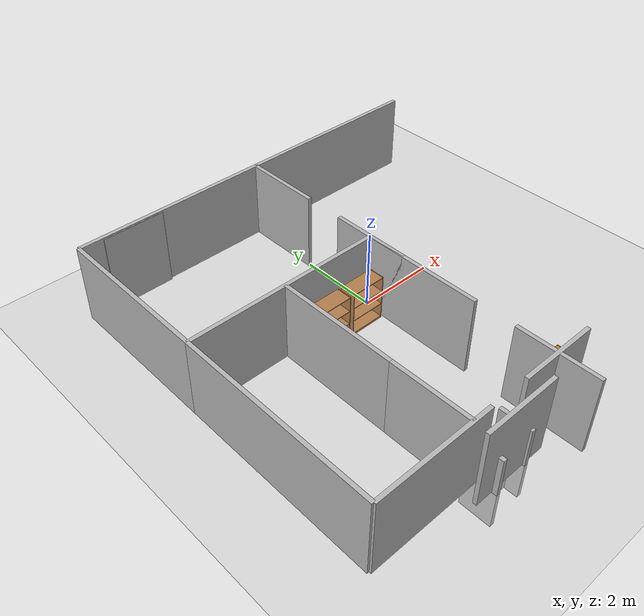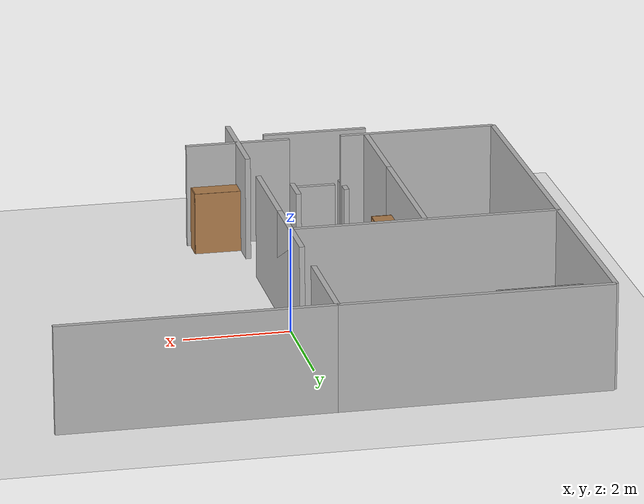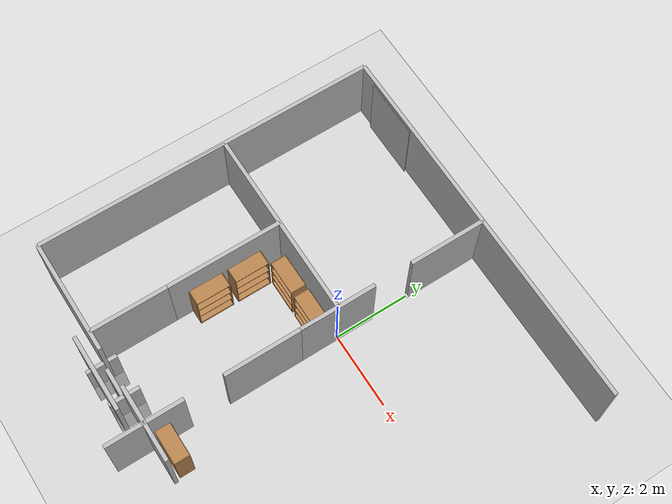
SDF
<sdf version="1.7">
 <world name="default">
  <model name="ground_plane">
   <static>1</static>
   <link name="link">
    <collision name="collision">
     <geometry><plane><normal>0 0 1</normal><size>100 100</size></plane></geometry>
     <surface>
      <contact><collide_bitmask>65535</collide_bitmask></contact>
      <friction><ode><mu>100</mu><mu2>50</mu2></ode></friction>
     </surface>
    </collision>
    <visual name="visual">
     <cast_shadows>0</cast_shadows>
     <geometry><plane><normal>0 0 1</normal><size>1 1</size></plane></geometry>
     <material>
      <script><uri>file://media/materials/scripts/gazebo.material</uri><name>Gazebo/Grey</name></script>
     </material>
    </visual>
   </link>
  </model>
  <model name="Bookshelf">
   <static>1</static>
   <link name="link">
    <inertial><mass>1</mass></inertial>
    <collision name="back">
     <pose>0 0.005 0.6 0 -0 0</pose>
     <geometry><box><size>0.9 0.01 1.2</size></box></geometry>
    </collision>
    <visual name="visual1">
     <pose>0 0.005 0.6 0 -0 0</pose>
     <geometry><box><size>0.9 0.01 1.2</size></box></geometry>
     <material>
      <diffuse>1 1 1 1</diffuse>
      <script><uri>file://media/materials/scripts/gazebo.material</uri><name>Gazebo/Wood</name></script>
      <pbr>
       <metal>
        <albedo_map>https://fuel.ignitionrobotics.org/1.0/openrobotics/models/bookshelf/3/files/bookshelf_diffuse.jpg</albedo_map>
       </metal>
      </pbr>
     </material>
    </visual>
    <collision name="left_side">
     <pose>0.45 -0.195 0.6 0 -0 0</pose>
     <geometry><box><size>0.02 0.4 1.2</size></box></geometry>
    </collision>
    <visual name="visual2">
     <pose>0.45 -0.195 0.6 0 -0 0</pose>
     <geometry><box><size>0.02 0.4 1.2</size></box></geometry>
     <material>
      <diffuse>1 1 1 1</diffuse>
      <script><uri>file://media/materials/scripts/gazebo.material</uri><name>Gazebo/Wood</name></script>
      <pbr>
       <metal>
        <albedo_map>https://fuel.ignitionrobotics.org/1.0/openrobotics/models/bookshelf/3/files/bookshelf_diffuse.jpg</albedo_map>
       </metal>
      </pbr>
     </material>
    </visual>
    <collision name="right_side">
     <pose>-0.45 -0.195 0.6 0 -0 0</pose>
     <geometry><box><size>0.02 0.4 1.2</size></box></geometry>
    </collision>
    <visual name="visual3">
     <pose>-0.45 -0.195 0.6 0 -0 0</pose>
     <geometry><box><size>0.02 0.4 1.2</size></box></geometry>
     <material>
      <diffuse>1 1 1 1</diffuse>
      <script><uri>file://media/materials/scripts/gazebo.material</uri><name>Gazebo/Wood</name></script>
      <pbr>
       <metal>
        <albedo_map>https://fuel.ignitionrobotics.org/1.0/openrobotics/models/bookshelf/3/files/bookshelf_diffuse.jpg</albedo_map>
       </metal>
      </pbr>
     </material>
    </visual>
    <collision name="bottom">
     <pose>0 -0.195 0.03 0 -0 0</pose>
     <geometry><box><size>0.88 0.4 0.06</size></box></geometry>
    </collision>
    <visual name="visual4">
     <pose>0 -0.195 0.03 0 -0 0</pose>
     <geometry><box><size>0.88 0.4 0.06</size></box></geometry>
     <material>
      <diffuse>1 1 1 1</diffuse>
      <script><uri>file://media/materials/scripts/gazebo.material</uri><name>Gazebo/Wood</name></script>
      <pbr>
       <metal>
        <albedo_map>https://fuel.ignitionrobotics.org/1.0/openrobotics/models/bookshelf/3/files/bookshelf_diffuse.jpg</albedo_map>
       </metal>
      </pbr>
     </material>
    </visual>
    <collision name="top">
     <pose>0 -0.195 1.19 0 -0 0</pose>
     <geometry><box><size>0.88 0.4 0.02</size></box></geometry>
    </collision>
    <visual name="visual5">
     <pose>0 -0.195 1.19 0 -0 0</pose>
     <geometry><box><size>0.88 0.4 0.02</size></box></geometry>
     <material>
      <diffuse>1 1 1 1</diffuse>
      <script><uri>file://media/materials/scripts/gazebo.material</uri><name>Gazebo/Wood</name></script>
      <pbr>
       <metal>
        <albedo_map>https://fuel.ignitionrobotics.org/1.0/openrobotics/models/bookshelf/3/files/bookshelf_diffuse.jpg</albedo_map>
       </metal>
      </pbr>
     </material>
    </visual>
    <collision name="low_shelf">
     <pose>0 -0.195 0.43 0 -0 0</pose>
     <geometry><box><size>0.88 0.4 0.02</size></box></geometry>
    </collision>
    <visual name="visual6">
     <pose>0 -0.195 0.43 0 -0 0</pose>
     <geometry><box><size>0.88 0.4 0.02</size></box></geometry>
     <material>
      <diffuse>1 1 1 1</diffuse>
      <script><uri>file://media/materials/scripts/gazebo.material</uri><name>Gazebo/Wood</name></script>
      <pbr>
       <metal>
        <albedo_map>https://fuel.ignitionrobotics.org/1.0/openrobotics/models/bookshelf/3/files/bookshelf_diffuse.jpg</albedo_map>
       </metal>
      </pbr>
     </material>
    </visual>
    <collision name="high_shelf">
     <pose>0 -0.195 0.8 0 -0 0</pose>
     <geometry><box><size>0.88 0.4 0.02</size></box></geometry>
    </collision>
    <visual name="visual7">
     <pose>0 -0.195 0.8 0 -0 0</pose>
     <geometry><box><size>0.88 0.4 0.02</size></box></geometry>
     <material>
      <diffuse>1 1 1 1</diffuse>
      <script><uri>file://media/materials/scripts/gazebo.material</uri><name>Gazebo/Wood</name></script>
      <pbr>
       <metal>
        <albedo_map>https://fuel.ignitionrobotics.org/1.0/openrobotics/models/bookshelf/3/files/bookshelf_diffuse.jpg</albedo_map>
       </metal>
      </pbr>
     </material>
    </visual>
   </link>
   <pose>0.48256 -4.48453 0 0 -0 0</pose>
  </model>
  <model name="door_08x2m_0">
   <link name="link">
    <visual name="visual">
     <geometry><box><size>0.1 0.8 2</size></box></geometry>
     <material>
      <script>
       <uri>https://fuel.ignitionrobotics.org/1.0/makerspet/models/door_08x2m/1/files/material/script</uri>
       <uri>https://fuel.ignitionrobotics.org/1.0/makerspet/models/door_08x2m/1/files/material/textures</uri>
       <name>Custom/door_08x2m</name>
      </script>
     </material>
    </visual>
   </link>
   <static>1</static>
   <pose>-1.11355 -5.04411 0 0 -0 0</pose>
  </model>
  <model name="living_room"><static>0</static><pose>-1.83596 1.40391 0 0 -0 0</pose></model>
  <model name="window_curtains_0">
   <link name="link">
    <visual name="visual">
     <geometry><box><size>0.02 1.5676 2</size></box></geometry>
     <material>
      <script>
       <uri>https://fuel.ignitionrobotics.org/1.0/makerspet/models/window_curtains/1/files/material/script</uri>
       <uri>https://fuel.ignitionrobotics.org/1.0/makerspet/models/window_curtains/1/files/material/textures</uri>
       <name>Custom/window_curtains</name>
      </script>
      <emissive>0 1 0 1</emissive>
     </material>
    </visual>
   </link>
   <static>1</static>
   <pose>-3.64443 3.90072 1 0 -0 1.5707</pose>
  </model>
  <model name="room_wall_2x5_2_clone_clone">
   <link name="link">
    <visual name="visual">
     <geometry><box><size>0.1 5 2</size></box></geometry>
     <material>
      <script>
       <uri>https://fuel.ignitionrobotics.org/1.0/makerspet/models/room_wall_2x5m/1/files/material/script</uri>
       <uri>https://fuel.ignitionrobotics.org/1.0/makerspet/models/room_wall_2x5m/1/files/material/textures</uri>
       <name>Custom/room_wall_2x5</name>
      </script>
     </material>
    </visual>
    <collision name="collision"><geometry><box><size>0.1 5 2</size></box></geometry></collision>
   </link>
   <static>1</static>
   <pose>2.5 4 1 0 -0 1.5707</pose>
  </model>
  <model name="door_08x2m">
   <link name="link">
    <visual name="visual">
     <geometry><box><size>0.1 0.8 2</size></box></geometry>
     <material>
      <script>
       <uri>https://fuel.gazebosim.org/1.0/makerspet/models/door_08x2m/1/files/material/script</uri>
       <uri>https://fuel.gazebosim.org/1.0/makerspet/models/door_08x2m/1/files/material/textures</uri>
       <name>Custom/door_08x2m</name>
      </script>
     </material>
    </visual>
   </link>
   <static>1</static>
   <pose>-1.50001 -5.0675 0 0 -0 1.5707</pose>
  </model>
  <model name="room_wall_2x2">
   <link name="link">
    <visual name="visual">
     <geometry><box><size>0.1 2 2</size></box></geometry>
     <material>
      <script>
       <uri>https://fuel.ignitionrobotics.org/1.0/makerspet/models/room_wall_2x5m/1/files/material/script</uri>
       <uri>https://fuel.ignitionrobotics.org/1.0/makerspet/models/room_wall_2x5m/1/files/material/textures</uri>
       <name>Custom/room_wall_2x5</name>
      </script>
     </material>
    </visual>
    <collision name="collision"><geometry><box><size>0.1 2 2</size></box></geometry></collision>
   </link>
   <static>1</static>
   <pose>0 3 1 0 -0 0</pose>
  </model>
  <model name="room_wall_2x5_2_clone_clone_clone">
   <link name="link">
    <visual name="visual">
     <geometry><box><size>0.1 5 2</size></box></geometry>
     <material>
      <script>
       <uri>https://fuel.ignitionrobotics.org/1.0/makerspet/models/room_wall_2x5m/1/files/material/script</uri>
       <uri>https://fuel.ignitionrobotics.org/1.0/makerspet/models/room_wall_2x5m/1/files/material/textures</uri>
       <name>Custom/room_wall_2x5</name>
      </script>
     </material>
    </visual>
    <collision name="collision"><geometry><box><size>0.1 5 2</size></box></geometry></collision>
   </link>
   <static>1</static>
   <pose>-2.5 4 1 0 -0 1.5707</pose>
  </model>
  <model name="room_wall_2x5_2_clone_clone_clone_0">
   <link name="link">
    <visual name="visual">
     <geometry><box><size>0.1 5 2</size></box></geometry>
     <material>
      <script>
       <uri>https://fuel.ignitionrobotics.org/1.0/makerspet/models/room_wall_2x5m/1/files/material/script</uri>
       <uri>https://fuel.ignitionrobotics.org/1.0/makerspet/models/room_wall_2x5m/1/files/material/textures</uri>
       <name>Custom/room_wall_2x5</name>
      </script>
     </material>
    </visual>
    <collision name="collision"><geometry><box><size>0.1 5 2</size></box></geometry></collision>
   </link>
   <static>1</static>
   <pose>-5 1.5 1 0 -0 0</pose>
  </model>
  <model name="room_wall_2x2_clone">
   <link name="link">
    <visual name="visual">
     <geometry><box><size>0.1 3 2</size></box></geometry>
     <material>
      <script>
       <uri>https://fuel.ignitionrobotics.org/1.0/makerspet/models/room_wall_2x5m/1/files/material/script</uri>
       <uri>https://fuel.ignitionrobotics.org/1.0/makerspet/models/room_wall_2x5m/1/files/material/textures</uri>
       <name>Custom/room_wall_2x5</name>
      </script>
     </material>
    </visual>
    <collision name="collision"><geometry><box><size>0.1 3 2</size></box></geometry></collision>
   </link>
   <static>1</static>
   <pose>0 -1.5 1 0 -0 0</pose>
  </model>
  <model name="room_wall_2x2_clone_clone_clone">
   <link name="link">
    <visual name="visual">
     <geometry><box><size>0.1 3 2</size></box></geometry>
     <material>
      <script>
       <uri>https://fuel.ignitionrobotics.org/1.0/makerspet/models/room_wall_2x5m/1/files/material/script</uri>
       <uri>https://fuel.ignitionrobotics.org/1.0/makerspet/models/room_wall_2x5m/1/files/material/textures</uri>
       <name>Custom/room_wall_2x5</name>
      </script>
     </material>
    </visual>
    <collision name="collision"><geometry><box><size>0.1 3 2</size></box></geometry></collision>
   </link>
   <static>1</static>
   <pose>-3.5 -5 1 0 -0 1.5707</pose>
  </model>
  <model name="door_08x2m_0_clone">
   <link name="link">
    <visual name="visual">
     <geometry><box><size>0.1 0.8 2</size></box></geometry>
     <material>
      <script>
       <uri>https://fuel.ignitionrobotics.org/1.0/makerspet/models/door_08x2m/1/files/material/script</uri>
       <uri>https://fuel.ignitionrobotics.org/1.0/makerspet/models/door_08x2m/1/files/material/textures</uri>
       <name>Custom/door_08x2m</name>
      </script>
     </material>
    </visual>
   </link>
   <static>1</static>
   <pose>-2.06337 -5.11198 0 0 -0 0</pose>
  </model>
  <model name="Bookshelf_clone">
   <static>1</static>
   <link name="link">
    <inertial><mass>1</mass></inertial>
    <collision name="back">
     <pose>0 0.005 0.6 0 -0 0</pose>
     <geometry><box><size>0.9 0.01 1.2</size></box></geometry>
    </collision>
    <visual name="visual1">
     <pose>0 0.005 0.6 0 -0 0</pose>
     <geometry><box><size>0.9 0.01 1.2</size></box></geometry>
     <material>
      <diffuse>1 1 1 1</diffuse>
      <script><uri>file://media/materials/scripts/gazebo.material</uri><name>Gazebo/Wood</name></script>
      <pbr>
       <metal>
        <albedo_map>https://fuel.ignitionrobotics.org/1.0/openrobotics/models/bookshelf/3/files/bookshelf_diffuse.jpg</albedo_map>
       </metal>
      </pbr>
     </material>
    </visual>
    <collision name="left_side">
     <pose>0.45 -0.195 0.6 0 -0 0</pose>
     <geometry><box><size>0.02 0.4 1.2</size></box></geometry>
    </collision>
    <visual name="visual2">
     <pose>0.45 -0.195 0.6 0 -0 0</pose>
     <geometry><box><size>0.02 0.4 1.2</size></box></geometry>
     <material>
      <diffuse>1 1 1 1</diffuse>
      <script><uri>file://media/materials/scripts/gazebo.material</uri><name>Gazebo/Wood</name></script>
      <pbr>
       <metal>
        <albedo_map>https://fuel.ignitionrobotics.org/1.0/openrobotics/models/bookshelf/3/files/bookshelf_diffuse.jpg</albedo_map>
       </metal>
      </pbr>
     </material>
    </visual>
    <collision name="right_side">
     <pose>-0.45 -0.195 0.6 0 -0 0</pose>
     <geometry><box><size>0.02 0.4 1.2</size></box></geometry>
    </collision>
    <visual name="visual3">
     <pose>-0.45 -0.195 0.6 0 -0 0</pose>
     <geometry><box><size>0.02 0.4 1.2</size></box></geometry>
     <material>
      <diffuse>1 1 1 1</diffuse>
      <script><uri>file://media/materials/scripts/gazebo.material</uri><name>Gazebo/Wood</name></script>
      <pbr>
       <metal>
        <albedo_map>https://fuel.ignitionrobotics.org/1.0/openrobotics/models/bookshelf/3/files/bookshelf_diffuse.jpg</albedo_map>
       </metal>
      </pbr>
     </material>
    </visual>
    <collision name="bottom">
     <pose>0 -0.195 0.03 0 -0 0</pose>
     <geometry><box><size>0.88 0.4 0.06</size></box></geometry>
    </collision>
    <visual name="visual4">
     <pose>0 -0.195 0.03 0 -0 0</pose>
     <geometry><box><size>0.88 0.4 0.06</size></box></geometry>
     <material>
      <diffuse>1 1 1 1</diffuse>
      <script><uri>file://media/materials/scripts/gazebo.material</uri><name>Gazebo/Wood</name></script>
      <pbr>
       <metal>
        <albedo_map>https://fuel.ignitionrobotics.org/1.0/openrobotics/models/bookshelf/3/files/bookshelf_diffuse.jpg</albedo_map>
       </metal>
      </pbr>
     </material>
    </visual>
    <collision name="top">
     <pose>0 -0.195 1.19 0 -0 0</pose>
     <geometry><box><size>0.88 0.4 0.02</size></box></geometry>
    </collision>
    <visual name="visual5">
     <pose>0 -0.195 1.19 0 -0 0</pose>
     <geometry><box><size>0.88 0.4 0.02</size></box></geometry>
     <material>
      <diffuse>1 1 1 1</diffuse>
      <script><uri>file://media/materials/scripts/gazebo.material</uri><name>Gazebo/Wood</name></script>
      <pbr>
       <metal>
        <albedo_map>https://fuel.ignitionrobotics.org/1.0/openrobotics/models/bookshelf/3/files/bookshelf_diffuse.jpg</albedo_map>
       </metal>
      </pbr>
     </material>
    </visual>
    <collision name="low_shelf">
     <pose>0 -0.195 0.43 0 -0 0</pose>
     <geometry><box><size>0.88 0.4 0.02</size></box></geometry>
    </collision>
    <visual name="visual6">
     <pose>0 -0.195 0.43 0 -0 0</pose>
     <geometry><box><size>0.88 0.4 0.02</size></box></geometry>
     <material>
      <diffuse>1 1 1 1</diffuse>
      <script><uri>file://media/materials/scripts/gazebo.material</uri><name>Gazebo/Wood</name></script>
      <pbr>
       <metal>
        <albedo_map>https://fuel.ignitionrobotics.org/1.0/openrobotics/models/bookshelf/3/files/bookshelf_diffuse.jpg</albedo_map>
       </metal>
      </pbr>
     </material>
    </visual>
    <collision name="high_shelf">
     <pose>0 -0.195 0.8 0 -0 0</pose>
     <geometry><box><size>0.88 0.4 0.02</size></box></geometry>
    </collision>
    <visual name="visual7">
     <pose>0 -0.195 0.8 0 -0 0</pose>
     <geometry><box><size>0.88 0.4 0.02</size></box></geometry>
     <material>
      <diffuse>1 1 1 1</diffuse>
      <script><uri>file://media/materials/scripts/gazebo.material</uri><name>Gazebo/Wood</name></script>
      <pbr>
       <metal>
        <albedo_map>https://fuel.ignitionrobotics.org/1.0/openrobotics/models/bookshelf/3/files/bookshelf_diffuse.jpg</albedo_map>
       </metal>
      </pbr>
     </material>
    </visual>
   </link>
   <pose>-0.566576 -0.161307 0 0 -0 0</pose>
  </model>
  <model name="Bookshelf_clone_0">
   <static>1</static>
   <link name="link">
    <inertial><mass>1</mass></inertial>
    <collision name="back">
     <pose>0 0.005 0.6 0 -0 0</pose>
     <geometry><box><size>0.9 0.01 1.2</size></box></geometry>
    </collision>
    <visual name="visual1">
     <pose>0 0.005 0.6 0 -0 0</pose>
     <geometry><box><size>0.9 0.01 1.2</size></box></geometry>
     <material>
      <diffuse>1 1 1 1</diffuse>
      <script><uri>file://media/materials/scripts/gazebo.material</uri><name>Gazebo/Wood</name></script>
      <pbr>
       <metal>
        <albedo_map>https://fuel.ignitionrobotics.org/1.0/openrobotics/models/bookshelf/3/files/bookshelf_diffuse.jpg</albedo_map>
       </metal>
      </pbr>
     </material>
    </visual>
    <collision name="left_side">
     <pose>0.45 -0.195 0.6 0 -0 0</pose>
     <geometry><box><size>0.02 0.4 1.2</size></box></geometry>
    </collision>
    <visual name="visual2">
     <pose>0.45 -0.195 0.6 0 -0 0</pose>
     <geometry><box><size>0.02 0.4 1.2</size></box></geometry>
     <material>
      <diffuse>1 1 1 1</diffuse>
      <script><uri>file://media/materials/scripts/gazebo.material</uri><name>Gazebo/Wood</name></script>
      <pbr>
       <metal>
        <albedo_map>https://fuel.ignitionrobotics.org/1.0/openrobotics/models/bookshelf/3/files/bookshelf_diffuse.jpg</albedo_map>
       </metal>
      </pbr>
     </material>
    </visual>
    <collision name="right_side">
     <pose>-0.45 -0.195 0.6 0 -0 0</pose>
     <geometry><box><size>0.02 0.4 1.2</size></box></geometry>
    </collision>
    <visual name="visual3">
     <pose>-0.45 -0.195 0.6 0 -0 0</pose>
     <geometry><box><size>0.02 0.4 1.2</size></box></geometry>
     <material>
      <diffuse>1 1 1 1</diffuse>
      <script><uri>file://media/materials/scripts/gazebo.material</uri><name>Gazebo/Wood</name></script>
      <pbr>
       <metal>
        <albedo_map>https://fuel.ignitionrobotics.org/1.0/openrobotics/models/bookshelf/3/files/bookshelf_diffuse.jpg</albedo_map>
       </metal>
      </pbr>
     </material>
    </visual>
    <collision name="bottom">
     <pose>0 -0.195 0.03 0 -0 0</pose>
     <geometry><box><size>0.88 0.4 0.06</size></box></geometry>
    </collision>
    <visual name="visual4">
     <pose>0 -0.195 0.03 0 -0 0</pose>
     <geometry><box><size>0.88 0.4 0.06</size></box></geometry>
     <material>
      <diffuse>1 1 1 1</diffuse>
      <script><uri>file://media/materials/scripts/gazebo.material</uri><name>Gazebo/Wood</name></script>
      <pbr>
       <metal>
        <albedo_map>https://fuel.ignitionrobotics.org/1.0/openrobotics/models/bookshelf/3/files/bookshelf_diffuse.jpg</albedo_map>
       </metal>
      </pbr>
     </material>
    </visual>
    <collision name="top">
     <pose>0 -0.195 1.19 0 -0 0</pose>
     <geometry><box><size>0.88 0.4 0.02</size></box></geometry>
    </collision>
    <visual name="visual5">
     <pose>0 -0.195 1.19 0 -0 0</pose>
     <geometry><box><size>0.88 0.4 0.02</size></box></geometry>
     <material>
      <diffuse>1 1 1 1</diffuse>
      <script><uri>file://media/materials/scripts/gazebo.material</uri><name>Gazebo/Wood</name></script>
      <pbr>
       <metal>
        <albedo_map>https://fuel.ignitionrobotics.org/1.0/openrobotics/models/bookshelf/3/files/bookshelf_diffuse.jpg</albedo_map>
       </metal>
      </pbr>
     </material>
    </visual>
    <collision name="low_shelf">
     <pose>0 -0.195 0.43 0 -0 0</pose>
     <geometry><box><size>0.88 0.4 0.02</size></box></geometry>
    </collision>
    <visual name="visual6">
     <pose>0 -0.195 0.43 0 -0 0</pose>
     <geometry><box><size>0.88 0.4 0.02</size></box></geometry>
     <material>
      <diffuse>1 1 1 1</diffuse>
      <script><uri>file://media/materials/scripts/gazebo.material</uri><name>Gazebo/Wood</name></script>
      <pbr>
       <metal>
        <albedo_map>https://fuel.ignitionrobotics.org/1.0/openrobotics/models/bookshelf/3/files/bookshelf_diffuse.jpg</albedo_map>
       </metal>
      </pbr>
     </material>
    </visual>
    <collision name="high_shelf">
     <pose>0 -0.195 0.8 0 -0 0</pose>
     <geometry><box><size>0.88 0.4 0.02</size></box></geometry>
    </collision>
    <visual name="visual7">
     <pose>0 -0.195 0.8 0 -0 0</pose>
     <geometry><box><size>0.88 0.4 0.02</size></box></geometry>
     <material>
      <diffuse>1 1 1 1</diffuse>
      <script><uri>file://media/materials/scripts/gazebo.material</uri><name>Gazebo/Wood</name></script>
      <pbr>
       <metal>
        <albedo_map>https://fuel.ignitionrobotics.org/1.0/openrobotics/models/bookshelf/3/files/bookshelf_diffuse.jpg</albedo_map>
       </metal>
      </pbr>
     </material>
    </visual>
   </link>
   <pose>-1.58295 -0.16309 0 0 -0 0</pose>
  </model>
  <model name="Bookshelf_clone_1">
   <static>1</static>
   <link name="link">
    <inertial><mass>1</mass></inertial>
    <collision name="back">
     <pose>0 0.005 0.6 0 -0 0</pose>
     <geometry><box><size>0.9 0.01 1.2</size></box></geometry>
    </collision>
    <visual name="visual1">
     <pose>0 0.005 0.6 0 -0 0</pose>
     <geometry><box><size>0.9 0.01 1.2</size></box></geometry>
     <material>
      <diffuse>1 1 1 1</diffuse>
      <script><uri>file://media/materials/scripts/gazebo.material</uri><name>Gazebo/Wood</name></script>
      <pbr>
       <metal>
        <albedo_map>https://fuel.ignitionrobotics.org/1.0/openrobotics/models/bookshelf/3/files/bookshelf_diffuse.jpg</albedo_map>
       </metal>
      </pbr>
     </material>
    </visual>
    <collision name="left_side">
     <pose>0.45 -0.195 0.6 0 -0 0</pose>
     <geometry><box><size>0.02 0.4 1.2</size></box></geometry>
    </collision>
    <visual name="visual2">
     <pose>0.45 -0.195 0.6 0 -0 0</pose>
     <geometry><box><size>0.02 0.4 1.2</size></box></geometry>
     <material>
      <diffuse>1 1 1 1</diffuse>
      <script><uri>file://media/materials/scripts/gazebo.material</uri><name>Gazebo/Wood</name></script>
      <pbr>
       <metal>
        <albedo_map>https://fuel.ignitionrobotics.org/1.0/openrobotics/models/bookshelf/3/files/bookshelf_diffuse.jpg</albedo_map>
       </metal>
      </pbr>
     </material>
    </visual>
    <collision name="right_side">
     <pose>-0.45 -0.195 0.6 0 -0 0</pose>
     <geometry><box><size>0.02 0.4 1.2</size></box></geometry>
    </collision>
    <visual name="visual3">
     <pose>-0.45 -0.195 0.6 0 -0 0</pose>
     <geometry><box><size>0.02 0.4 1.2</size></box></geometry>
     <material>
      <diffuse>1 1 1 1</diffuse>
      <script><uri>file://media/materials/scripts/gazebo.material</uri><name>Gazebo/Wood</name></script>
      <pbr>
       <metal>
        <albedo_map>https://fuel.ignitionrobotics.org/1.0/openrobotics/models/bookshelf/3/files/bookshelf_diffuse.jpg</albedo_map>
       </metal>
      </pbr>
     </material>
    </visual>
    <collision name="bottom">
     <pose>0 -0.195 0.03 0 -0 0</pose>
     <geometry><box><size>0.88 0.4 0.06</size></box></geometry>
    </collision>
    <visual name="visual4">
     <pose>0 -0.195 0.03 0 -0 0</pose>
     <geometry><box><size>0.88 0.4 0.06</size></box></geometry>
     <material>
      <diffuse>1 1 1 1</diffuse>
      <script><uri>file://media/materials/scripts/gazebo.material</uri><name>Gazebo/Wood</name></script>
      <pbr>
       <metal>
        <albedo_map>https://fuel.ignitionrobotics.org/1.0/openrobotics/models/bookshelf/3/files/bookshelf_diffuse.jpg</albedo_map>
       </metal>
      </pbr>
     </material>
    </visual>
    <collision name="top">
     <pose>0 -0.195 1.19 0 -0 0</pose>
     <geometry><box><size>0.88 0.4 0.02</size></box></geometry>
    </collision>
    <visual name="visual5">
     <pose>0 -0.195 1.19 0 -0 0</pose>
     <geometry><box><size>0.88 0.4 0.02</size></box></geometry>
     <material>
      <diffuse>1 1 1 1</diffuse>
      <script><uri>file://media/materials/scripts/gazebo.material</uri><name>Gazebo/Wood</name></script>
      <pbr>
       <metal>
        <albedo_map>https://fuel.ignitionrobotics.org/1.0/openrobotics/models/bookshelf/3/files/bookshelf_diffuse.jpg</albedo_map>
       </metal>
      </pbr>
     </material>
    </visual>
    <collision name="low_shelf">
     <pose>0 -0.195 0.43 0 -0 0</pose>
     <geometry><box><size>0.88 0.4 0.02</size></box></geometry>
    </collision>
    <visual name="visual6">
     <pose>0 -0.195 0.43 0 -0 0</pose>
     <geometry><box><size>0.88 0.4 0.02</size></box></geometry>
     <material>
      <diffuse>1 1 1 1</diffuse>
      <script><uri>file://media/materials/scripts/gazebo.material</uri><name>Gazebo/Wood</name></script>
      <pbr>
       <metal>
        <albedo_map>https://fuel.ignitionrobotics.org/1.0/openrobotics/models/bookshelf/3/files/bookshelf_diffuse.jpg</albedo_map>
       </metal>
      </pbr>
     </material>
    </visual>
    <collision name="high_shelf">
     <pose>0 -0.195 0.8 0 -0 0</pose>
     <geometry><box><size>0.88 0.4 0.02</size></box></geometry>
    </collision>
    <visual name="visual7">
     <pose>0 -0.195 0.8 0 -0 0</pose>
     <geometry><box><size>0.88 0.4 0.02</size></box></geometry>
     <material>
      <diffuse>1 1 1 1</diffuse>
      <script><uri>file://media/materials/scripts/gazebo.material</uri><name>Gazebo/Wood</name></script>
      <pbr>
       <metal>
        <albedo_map>https://fuel.ignitionrobotics.org/1.0/openrobotics/models/bookshelf/3/files/bookshelf_diffuse.jpg</albedo_map>
       </metal>
      </pbr>
     </material>
    </visual>
   </link>
   <pose>-2.4561 -1.04839 0 0 -0 1.5707</pose>
  </model>
  <model name="room_wall_2x2_clone_clone_clone_0">
   <link name="link">
    <visual name="visual">
     <geometry><box><size>0.1 3 2</size></box></geometry>
     <material>
      <script>
       <uri>https://fuel.ignitionrobotics.org/1.0/makerspet/models/room_wall_2x5m/1/files/material/script</uri>
       <uri>https://fuel.ignitionrobotics.org/1.0/makerspet/models/room_wall_2x5m/1/files/material/textures</uri>
       <name>Custom/room_wall_2x5</name>
      </script>
     </material>
    </visual>
    <collision name="collision"><geometry><box><size>0.1 3 2</size></box></geometry></collision>
   </link>
   <static>1</static>
   <pose>-2.5 -1.5 1 0 -0 0</pose>
  </model>
  <model name="room_wall_2x2_clone_0">
   <link name="link">
    <visual name="visual">
     <geometry><box><size>0.1 2 2</size></box></geometry>
     <material>
      <script>
       <uri>https://fuel.ignitionrobotics.org/1.0/makerspet/models/room_wall_2x5m/1/files/material/script</uri>
       <uri>https://fuel.ignitionrobotics.org/1.0/makerspet/models/room_wall_2x5m/1/files/material/textures</uri>
       <name>Custom/room_wall_2x5</name>
      </script>
     </material>
    </visual>
    <collision name="collision"><geometry><box><size>0.1 2 2</size></box></geometry></collision>
   </link>
   <static>1</static>
   <pose>0 -5 1 0 -0 1.5707</pose>
  </model>
  <model name="room_wall_2x5_2_clone_clone_clone_0_clone">
   <link name="link">
    <visual name="visual">
     <geometry><box><size>0.1 5 2</size></box></geometry>
     <material>
      <script>
       <uri>https://fuel.ignitionrobotics.org/1.0/makerspet/models/room_wall_2x5m/1/files/material/script</uri>
       <uri>https://fuel.ignitionrobotics.org/1.0/makerspet/models/room_wall_2x5m/1/files/material/textures</uri>
       <name>Custom/room_wall_2x5</name>
      </script>
     </material>
    </visual>
    <collision name="collision"><geometry><box><size>0.1 5 2</size></box></geometry></collision>
   </link>
   <static>1</static>
   <pose>-5 -2.5 1 0 -0 0</pose>
  </model>
  <model name="room_wall_2x5_2_clone_clone_clone_clone">
   <link name="link">
    <visual name="visual">
     <geometry><box><size>0.1 5 2</size></box></geometry>
     <material>
      <script>
       <uri>https://fuel.ignitionrobotics.org/1.0/makerspet/models/room_wall_2x5m/1/files/material/script</uri>
       <uri>https://fuel.ignitionrobotics.org/1.0/makerspet/models/room_wall_2x5m/1/files/material/textures</uri>
       <name>Custom/room_wall_2x5</name>
      </script>
     </material>
    </visual>
    <collision name="collision"><geometry><box><size>0.1 5 2</size></box></geometry></collision>
   </link>
   <static>1</static>
   <pose>-2.5 0 1 0 -0 1.5707</pose>
  </model>
  <model name="room_wall_2x2_clone_0_clone">
   <link name="link">
    <visual name="visual">
     <geometry><box><size>0.1 2 2</size></box></geometry>
     <material>
      <script>
       <uri>https://fuel.ignitionrobotics.org/1.0/makerspet/models/room_wall_2x5m/1/files/material/script</uri>
       <uri>https://fuel.ignitionrobotics.org/1.0/makerspet/models/room_wall_2x5m/1/files/material/textures</uri>
       <name>Custom/room_wall_2x5</name>
      </script>
     </material>
    </visual>
    <collision name="collision"><geometry><box><size>0.1 2 2</size></box></geometry></collision>
   </link>
   <static>1</static>
   <pose>0 -5 1 0 -0 0</pose>
  </model>
  <model name="room_wall_2x2_clone_0_clone_clone">
   <link name="link">
    <visual name="visual">
     <geometry><box><size>0.1 2 2</size></box></geometry>
     <material>
      <script>
       <uri>https://fuel.ignitionrobotics.org/1.0/makerspet/models/room_wall_2x5m/1/files/material/script</uri>
       <uri>https://fuel.ignitionrobotics.org/1.0/makerspet/models/room_wall_2x5m/1/files/material/textures</uri>
       <name>Custom/room_wall_2x5</name>
      </script>
     </material>
    </visual>
    <collision name="collision"><geometry><box><size>0.1 2 2</size></box></geometry></collision>
   </link>
   <static>1</static>
   <pose>-2.5 -4 1 0 -0 0</pose>
  </model>
  <model name="room_wall_2x2_clone_1">
   <link name="link">
    <visual name="visual">
     <geometry><box><size>0.1 2 2</size></box></geometry>
     <material>
      <script>
       <uri>https://fuel.ignitionrobotics.org/1.0/makerspet/models/room_wall_2x5m/1/files/material/script</uri>
       <uri>https://fuel.ignitionrobotics.org/1.0/makerspet/models/room_wall_2x5m/1/files/material/textures</uri>
       <name>Custom/room_wall_2x5</name>
      </script>
     </material>
    </visual>
    <collision name="collision"><geometry><box><size>0.1 2 2</size></box></geometry></collision>
   </link>
   <static>1</static>
   <pose>0 0 1 0 -0 0</pose>
  </model>
  <model name="Bookshelf_clone_1_clone">
   <static>1</static>
   <link name="link">
    <inertial><mass>1</mass></inertial>
    <collision name="back">
     <pose>0 0.005 0.6 0 -0 0</pose>
     <geometry><box><size>0.9 0.01 1.2</size></box></geometry>
    </collision>
    <visual name="visual1">
     <pose>0 0.005 0.6 0 -0 0</pose>
     <geometry><box><size>0.9 0.01 1.2</size></box></geometry>
     <material>
      <diffuse>1 1 1 1</diffuse>
      <script><uri>file://media/materials/scripts/gazebo.material</uri><name>Gazebo/Wood</name></script>
      <pbr>
       <metal>
        <albedo_map>https://fuel.ignitionrobotics.org/1.0/openrobotics/models/bookshelf/3/files/bookshelf_diffuse.jpg</albedo_map>
       </metal>
      </pbr>
     </material>
    </visual>
    <collision name="left_side">
     <pose>0.45 -0.195 0.6 0 -0 0</pose>
     <geometry><box><size>0.02 0.4 1.2</size></box></geometry>
    </collision>
    <visual name="visual2">
     <pose>0.45 -0.195 0.6 0 -0 0</pose>
     <geometry><box><size>0.02 0.4 1.2</size></box></geometry>
     <material>
      <diffuse>1 1 1 1</diffuse>
      <script><uri>file://media/materials/scripts/gazebo.material</uri><name>Gazebo/Wood</name></script>
      <pbr>
       <metal>
        <albedo_map>https://fuel.ignitionrobotics.org/1.0/openrobotics/models/bookshelf/3/files/bookshelf_diffuse.jpg</albedo_map>
       </metal>
      </pbr>
     </material>
    </visual>
    <collision name="right_side">
     <pose>-0.45 -0.195 0.6 0 -0 0</pose>
     <geometry><box><size>0.02 0.4 1.2</size></box></geometry>
    </collision>
    <visual name="visual3">
     <pose>-0.45 -0.195 0.6 0 -0 0</pose>
     <geometry><box><size>0.02 0.4 1.2</size></box></geometry>
     <material>
      <diffuse>1 1 1 1</diffuse>
      <script><uri>file://media/materials/scripts/gazebo.material</uri><name>Gazebo/Wood</name></script>
      <pbr>
       <metal>
        <albedo_map>https://fuel.ignitionrobotics.org/1.0/openrobotics/models/bookshelf/3/files/bookshelf_diffuse.jpg</albedo_map>
       </metal>
      </pbr>
     </material>
    </visual>
    <collision name="bottom">
     <pose>0 -0.195 0.03 0 -0 0</pose>
     <geometry><box><size>0.88 0.4 0.06</size></box></geometry>
    </collision>
    <visual name="visual4">
     <pose>0 -0.195 0.03 0 -0 0</pose>
     <geometry><box><size>0.88 0.4 0.06</size></box></geometry>
     <material>
      <diffuse>1 1 1 1</diffuse>
      <script><uri>file://media/materials/scripts/gazebo.material</uri><name>Gazebo/Wood</name></script>
      <pbr>
       <metal>
        <albedo_map>https://fuel.ignitionrobotics.org/1.0/openrobotics/models/bookshelf/3/files/bookshelf_diffuse.jpg</albedo_map>
       </metal>
      </pbr>
     </material>
    </visual>
    <collision name="top">
     <pose>0 -0.195 1.19 0 -0 0</pose>
     <geometry><box><size>0.88 0.4 0.02</size></box></geometry>
    </collision>
    <visual name="visual5">
     <pose>0 -0.195 1.19 0 -0 0</pose>
     <geometry><box><size>0.88 0.4 0.02</size></box></geometry>
     <material>
      <diffuse>1 1 1 1</diffuse>
      <script><uri>file://media/materials/scripts/gazebo.material</uri><name>Gazebo/Wood</name></script>
      <pbr>
       <metal>
        <albedo_map>https://fuel.ignitionrobotics.org/1.0/openrobotics/models/bookshelf/3/files/bookshelf_diffuse.jpg</albedo_map>
       </metal>
      </pbr>
     </material>
    </visual>
    <collision name="low_shelf">
     <pose>0 -0.195 0.43 0 -0 0</pose>
     <geometry><box><size>0.88 0.4 0.02</size></box></geometry>
    </collision>
    <visual name="visual6">
     <pose>0 -0.195 0.43 0 -0 0</pose>
     <geometry><box><size>0.88 0.4 0.02</size></box></geometry>
     <material>
      <diffuse>1 1 1 1</diffuse>
      <script><uri>file://media/materials/scripts/gazebo.material</uri><name>Gazebo/Wood</name></script>
      <pbr>
       <metal>
        <albedo_map>https://fuel.ignitionrobotics.org/1.0/openrobotics/models/bookshelf/3/files/bookshelf_diffuse.jpg</albedo_map>
       </metal>
      </pbr>
     </material>
    </visual>
    <collision name="high_shelf">
     <pose>0 -0.195 0.8 0 -0 0</pose>
     <geometry><box><size>0.88 0.4 0.02</size></box></geometry>
    </collision>
    <visual name="visual7">
     <pose>0 -0.195 0.8 0 -0 0</pose>
     <geometry><box><size>0.88 0.4 0.02</size></box></geometry>
     <material>
      <diffuse>1 1 1 1</diffuse>
      <script><uri>file://media/materials/scripts/gazebo.material</uri><name>Gazebo/Wood</name></script>
      <pbr>
       <metal>
        <albedo_map>https://fuel.ignitionrobotics.org/1.0/openrobotics/models/bookshelf/3/files/bookshelf_diffuse.jpg</albedo_map>
       </metal>
      </pbr>
     </material>
    </visual>
   </link>
   <pose>-2.45938 -2.09858 0 0 -0 1.5707</pose>
  </model>
  <model name="room_wall_2x2_clone_0_clone_0">
   <link name="link">
    <visual name="visual">
     <geometry><box><size>0.1 2 2</size></box></geometry>
     <material>
      <script>
       <uri>https://fuel.ignitionrobotics.org/1.0/makerspet/models/room_wall_2x5m/1/files/material/script</uri>
       <uri>https://fuel.ignitionrobotics.org/1.0/makerspet/models/room_wall_2x5m/1/files/material/textures</uri>
       <name>Custom/room_wall_2x5</name>
      </script>
     </material>
    </visual>
    <collision name="collision"><geometry><box><size>0.1 2 2</size></box></geometry></collision>
   </link>
   <static>1</static>
   <pose>-1.56466 -5.34276 1 0 -0 1.5707</pose>
  </model>
 </world>
</sdf>
